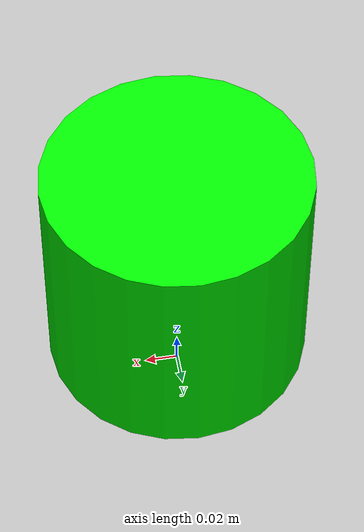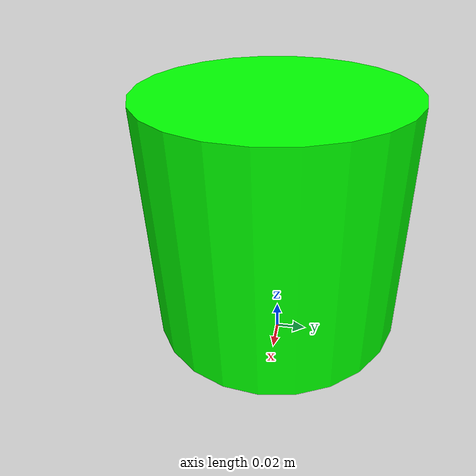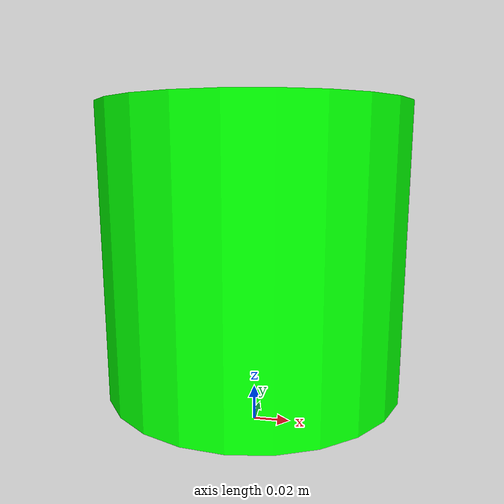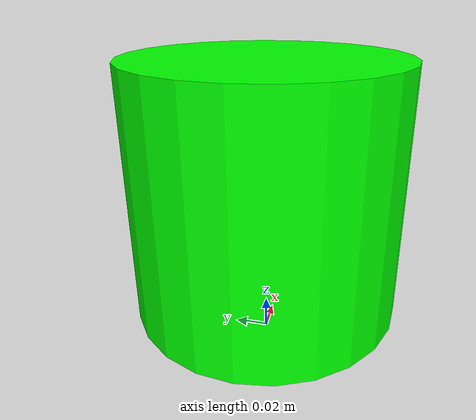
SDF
<?xml version='1.0'?>
<sdf version='1.5'>
  <model name='ChassisEK'>

      <link name='chassis'>

        <pose frame=''>0 0 0.1 0 0 0</pose>
        <collision name='collision'>
          <geometry>
            <cylinder>
              <radius>0.075</radius>
              <length>0.15</length>
            </cylinder>
          </geometry>
        </collision>
        <visual name='visual'>
          <geometry>
            <cylinder>
              <radius>0.08</radius>
              <length>0.15</length>
            </cylinder>
          </geometry>
          <material>
            <ambient>0 1 0 1</ambient>
            <diffuse>0 1 0 1</diffuse>
            <specular>0.1 0.1 0.1 1</specular>
            <emissive>0 0 0 0</emissive>
          </material>
        </visual>
        <gravity>true</gravity>
        <inertial>
          <pose> 0 0 -.05 0 0 0 </pose>
          <mass> 2 </mass>
        </inertial>
      </link>

    <static>0</static>
    <allow_auto_disable>1</allow_auto_disable>
  </model>
</sdf>
